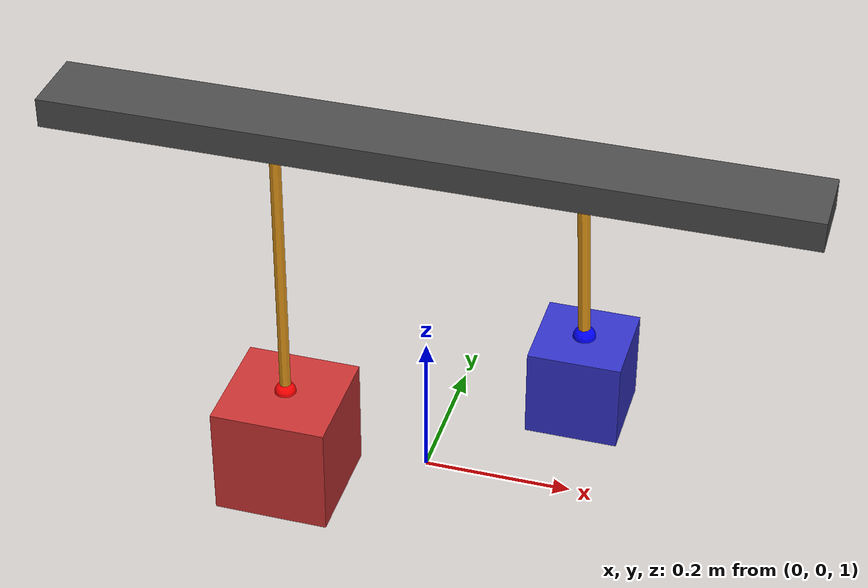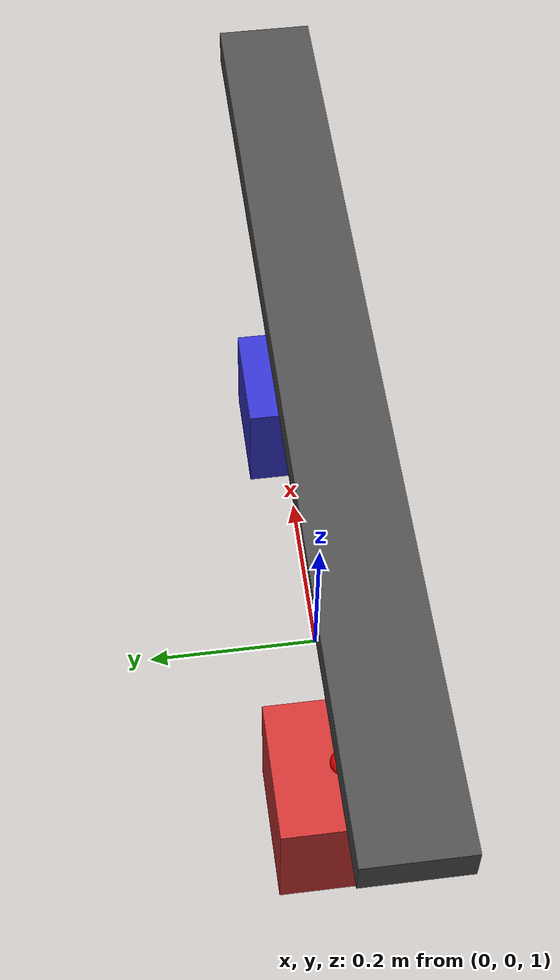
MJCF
<mujoco model="tendon_pulley">
  <compiler angle="radian" autolimits="true"/>

  <option gravity="0 0 -9.81"/>

  <default>
    <joint damping="0.5" armature="0.01"/>
    <geom rgba="0.6 0.6 0.6 1"/>
  </default>

  <worldbody>
    <!-- Fixed support beam with two anchor points -->
    <body name="support" pos="0 0 1.5">
      <geom type="box" size="0.5 0.05 0.02" rgba="0.3 0.3 0.3 1"/>
      <site name="anchor_left" pos="-0.2 0 -0.02" size="0.02" rgba="1 1 0 1"/>
      <site name="anchor_right" pos="0.2 0 -0.02" size="0.02" rgba="1 1 0 1"/>
    </body>

    <!-- Left side: heavy weight (2kg) - positioned directly under anchor_left -->
    <body name="heavy_weight" pos="-0.2 0 1.0">
      <freejoint name="heavy_free"/>
      <inertial mass="4.0" pos="0 0 0" diaginertia="0.01 0.01 0.01"/>
      <geom type="box" size="0.08 0.08 0.08" rgba="0.8 0.2 0.2 1"/>
      <site name="heavy_site" pos="0 0 0.08" size="0.015" rgba="1 0 0 1"/>
    </body>

    <!-- Right side: light weight (1kg) - slightly offset for gentle movement, balances with 2:1 pulley ratio -->
    <body name="light_weight" pos="0.21 0 1.2">
      <freejoint name="light_free"/>
      <inertial mass="1.0" pos="0 0 0" diaginertia="0.005 0.005 0.005"/>
      <geom type="box" size="0.06 0.06 0.06" rgba="0.2 0.2 0.8 1"/>
      <site name="light_site" pos="0 0 0.06" size="0.015" rgba="0 0 1 1"/>
    </body>
  </worldbody>

  <tendon>
    <!-- Pulley tendon: models a single physical pulley using two MJCF pulleys -->
    <!-- In MJCF, each branch starts with a pulley element -->
    <!-- Branch 1 (divisor=1): anchor_left to heavy_site -->
    <!-- Branch 2 (divisor=2): anchor_right to light_site -->
    <spatial name="four_to_one_pulley" width="0.008" rgba="0.9 0.6 0.1 1" stiffness="5000" damping="50">
      <pulley divisor="0.5"/>
      <site site="anchor_left"/>
      <site site="heavy_site"/>
      <pulley divisor="2.0"/>
      <site site="anchor_right"/>
      <site site="light_site"/>
    </spatial>
  </tendon>
</mujoco>
